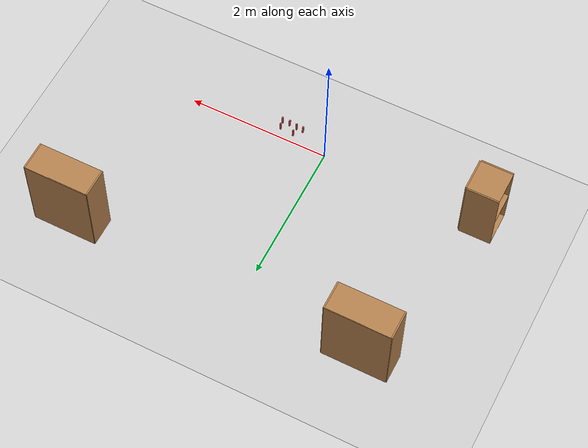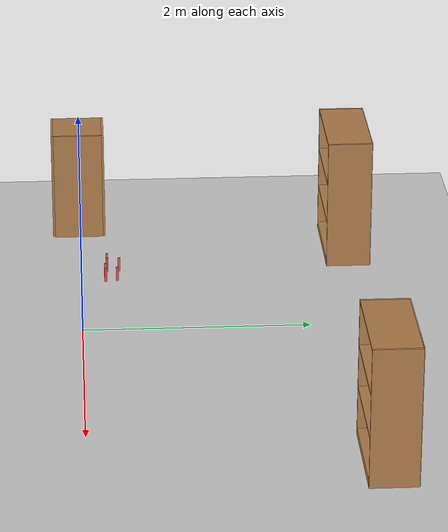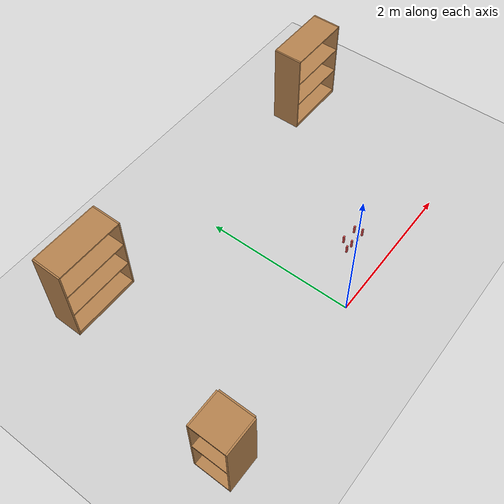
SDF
<sdf version="1.6">
 <world name="default">
  <light name="sun" type="directional">
   <pose>0 0 10 0 -0 0</pose>
   <diffuse>0.8 0.8 0.8 1</diffuse>
   <specular>0.2 0.2 0.2 1</specular>
   <attenuation>
    <range>1000</range>
    <constant>0.9</constant>
    <linear>0.01</linear>
    <quadratic>0.001</quadratic>
   </attenuation>
   <direction>-0.5 0.1 -0.9</direction>
  </light>
  <model name="ground_plane">
   <static>1</static>
   <link name="link">
    <collision name="collision">
     <geometry><plane><normal>0 0 1</normal><size>100 100</size></plane></geometry>
     <surface><friction><ode><mu>100</mu><mu2>50</mu2></ode></friction></surface>
    </collision>
    <visual name="visual">
     <cast_shadows>0</cast_shadows>
     <geometry><plane><normal>0 0 1</normal><size>100 100</size></plane></geometry>
     <material>
      <script><uri>file://media/materials/scripts/gazebo.material</uri><name>Gazebo/Grey</name></script>
     </material>
    </visual>
   </link>
  </model>
  <gravity>0 0 -9.8</gravity>
  <magnetic_field>6e-06 2.3e-05 -4.2e-05</magnetic_field>
  <atmosphere type="adiabatic"/>
  <physics name="default_physics" default="0" type="ode">
   <max_step_size>0.001</max_step_size>
   <real_time_factor>1</real_time_factor>
   <real_time_update_rate>1000</real_time_update_rate>
  </physics>
  <scene><ambient>0.4 0.4 0.4 1</ambient><background>0.7 0.7 0.7 1</background><shadows>1</shadows></scene>
  <audio><device>default</device></audio>
  <spherical_coordinates>
   <surface_model>EARTH_WGS84</surface_model>
   <latitude_deg>0</latitude_deg>
   <longitude_deg>0</longitude_deg>
   <elevation>0</elevation>
   <heading_deg>0</heading_deg>
  </spherical_coordinates>
  <model name="cabinet">
   <static>1</static>
   <link name="cabinet_bottom_plate">
    <inertial>
     <pose>0 0 -1 0 -0 0</pose>
     <inertia><ixx>2.05</ixx><ixy>0</ixy><ixz>0</ixz><iyy>2.05</iyy><iyz>0</iyz><izz>2.05</izz></inertia>
     <mass>25</mass>
    </inertial>
    <collision name="cabinet_bottom_plate_geom">
     <pose>0 0 0.01 0 -0 0</pose>
     <geometry><box><size>0.45 0.45 0.02</size></box></geometry>
    </collision>
    <visual name="cabinet_bottom_plate_geom_visual">
     <pose>0 0 0.01 0 -0 0</pose>
     <geometry><box><size>0.45 0.45 0.02</size></box></geometry>
     <material>
      <script><uri>file://media/materials/scripts/gazebo.material</uri><name>Gazebo/Wood</name></script>
     </material>
    </visual>
    <collision name="cabinet_bottom_plate_geom_cabinet_back_plate">
     <pose>0.235 0 0.51 0 -0 0</pose>
     <geometry><box><size>0.02 0.45 1.02</size></box></geometry>
    </collision>
    <visual name="cabinet_bottom_plate_geom_cabinet_back_plate_visual">
     <pose>0.235 0 0.51 0 -0 0</pose>
     <geometry><box><size>0.02 0.45 1.02</size></box></geometry>
     <material>
      <script><uri>file://media/materials/scripts/gazebo.material</uri><name>Gazebo/Wood</name></script>
     </material>
    </visual>
    <collision name="cabinet_bottom_plate_geom_cabinet_left_plate">
     <pose>0 0.235 0.51 0 -0 0</pose>
     <geometry><box><size>0.45 0.02 1.02</size></box></geometry>
    </collision>
    <visual name="cabinet_bottom_plate_geom_cabinet_left_plate_visual">
     <pose>0 0.235 0.51 0 -0 0</pose>
     <geometry><box><size>0.45 0.02 1.02</size></box></geometry>
     <material>
      <script><uri>file://media/materials/scripts/gazebo.material</uri><name>Gazebo/Wood</name></script>
     </material>
    </visual>
    <collision name="cabinet_bottom_plate_geom_cabinet_middle_plate">
     <pose>0 0 0.51 0 -0 0</pose>
     <geometry><box><size>0.45 0.45 0.02</size></box></geometry>
    </collision>
    <visual name="cabinet_bottom_plate_geom_cabinet_middle_plate_visual">
     <pose>0 0 0.51 0 -0 0</pose>
     <geometry><box><size>0.45 0.45 0.02</size></box></geometry>
     <material>
      <script><uri>file://media/materials/scripts/gazebo.material</uri><name>Gazebo/Wood</name></script>
     </material>
    </visual>
    <collision name="cabinet_bottom_plate_geom_cabinet_right_plate">
     <pose>0 -0.235 0.51 0 -0 0</pose>
     <geometry><box><size>0.45 0.02 1.02</size></box></geometry>
    </collision>
    <visual name="cabinet_bottom_plate_geom_cabinet_right_plate_visual">
     <pose>0 -0.235 0.51 0 -0 0</pose>
     <geometry><box><size>0.45 0.02 1.02</size></box></geometry>
     <material>
      <script><uri>file://media/materials/scripts/gazebo.material</uri><name>Gazebo/Wood</name></script>
     </material>
    </visual>
    <collision name="cabinet_bottom_plate_geom_cabinet_top_plate">
     <pose>0 0 1.01 0 -0 0</pose>
     <geometry><box><size>0.45 0.45 0.02</size></box></geometry>
    </collision>
    <visual name="cabinet_bottom_plate_geom_cabinet_top_plate_visual">
     <pose>0 0 1.01 0 -0 0</pose>
     <geometry><box><size>0.45 0.45 0.02</size></box></geometry>
     <material>
      <script><uri>file://media/materials/scripts/gazebo.material</uri><name>Gazebo/Wood</name></script>
     </material>
    </visual>
   </link>
   <pose>-2.29685 -0.011015 0 0 -0 0</pose>
  </model>
  <model name="bookshelf">
   <static>1</static>
   <link name="link">
    <inertial><mass>1</mass></inertial>
    <collision name="back">
     <pose>0 0.005 0.6 0 -0 0</pose>
     <geometry><box><size>0.9 0.01 1.2</size></box></geometry>
    </collision>
    <visual name="visual1">
     <pose>0 0.005 0.6 0 -0 0</pose>
     <geometry><box><size>0.9 0.01 1.2</size></box></geometry>
     <material>
      <script><uri>file://media/materials/scripts/gazebo.material</uri><name>Gazebo/Wood</name></script>
     </material>
    </visual>
    <collision name="left_side">
     <pose>0.45 -0.195 0.6 0 -0 0</pose>
     <geometry><box><size>0.02 0.4 1.2</size></box></geometry>
    </collision>
    <visual name="visual2">
     <pose>0.45 -0.195 0.6 0 -0 0</pose>
     <geometry><box><size>0.02 0.4 1.2</size></box></geometry>
     <material>
      <script><uri>file://media/materials/scripts/gazebo.material</uri><name>Gazebo/Wood</name></script>
     </material>
    </visual>
    <collision name="right_side">
     <pose>-0.45 -0.195 0.6 0 -0 0</pose>
     <geometry><box><size>0.02 0.4 1.2</size></box></geometry>
    </collision>
    <visual name="visual3">
     <pose>-0.45 -0.195 0.6 0 -0 0</pose>
     <geometry><box><size>0.02 0.4 1.2</size></box></geometry>
     <material>
      <script><uri>file://media/materials/scripts/gazebo.material</uri><name>Gazebo/Wood</name></script>
     </material>
    </visual>
    <collision name="bottom">
     <pose>0 -0.195 0.03 0 -0 0</pose>
     <geometry><box><size>0.88 0.4 0.06</size></box></geometry>
    </collision>
    <visual name="visual4">
     <pose>0 -0.195 0.03 0 -0 0</pose>
     <geometry><box><size>0.88 0.4 0.06</size></box></geometry>
     <material>
      <script><uri>file://media/materials/scripts/gazebo.material</uri><name>Gazebo/Wood</name></script>
     </material>
    </visual>
    <collision name="top">
     <pose>0 -0.195 1.19 0 -0 0</pose>
     <geometry><box><size>0.88 0.4 0.02</size></box></geometry>
    </collision>
    <visual name="visual5">
     <pose>0 -0.195 1.19 0 -0 0</pose>
     <geometry><box><size>0.88 0.4 0.02</size></box></geometry>
     <material>
      <script><uri>file://media/materials/scripts/gazebo.material</uri><name>Gazebo/Wood</name></script>
     </material>
    </visual>
    <collision name="low_shelf">
     <pose>0 -0.195 0.43 0 -0 0</pose>
     <geometry><box><size>0.88 0.4 0.02</size></box></geometry>
    </collision>
    <visual name="visual6">
     <pose>0 -0.195 0.43 0 -0 0</pose>
     <geometry><box><size>0.88 0.4 0.02</size></box></geometry>
     <material>
      <script><uri>file://media/materials/scripts/gazebo.material</uri><name>Gazebo/Wood</name></script>
     </material>
    </visual>
    <collision name="high_shelf">
     <pose>0 -0.195 0.8 0 -0 0</pose>
     <geometry><box><size>0.88 0.4 0.02</size></box></geometry>
    </collision>
    <visual name="visual7">
     <pose>0 -0.195 0.8 0 -0 0</pose>
     <geometry><box><size>0.88 0.4 0.02</size></box></geometry>
     <material>
      <script><uri>file://media/materials/scripts/gazebo.material</uri><name>Gazebo/Wood</name></script>
     </material>
    </visual>
   </link>
   <pose>-1.70945 2.65382 0 0 -0 0</pose>
  </model>
  <model name="bookshelf_0">
   <static>1</static>
   <link name="link">
    <inertial><mass>1</mass></inertial>
    <collision name="back">
     <pose>0 0.005 0.6 0 -0 0</pose>
     <geometry><box><size>0.9 0.01 1.2</size></box></geometry>
    </collision>
    <visual name="visual1">
     <pose>0 0.005 0.6 0 -0 0</pose>
     <geometry><box><size>0.9 0.01 1.2</size></box></geometry>
     <material>
      <script><uri>file://media/materials/scripts/gazebo.material</uri><name>Gazebo/Wood</name></script>
     </material>
    </visual>
    <collision name="left_side">
     <pose>0.45 -0.195 0.6 0 -0 0</pose>
     <geometry><box><size>0.02 0.4 1.2</size></box></geometry>
    </collision>
    <visual name="visual2">
     <pose>0.45 -0.195 0.6 0 -0 0</pose>
     <geometry><box><size>0.02 0.4 1.2</size></box></geometry>
     <material>
      <script><uri>file://media/materials/scripts/gazebo.material</uri><name>Gazebo/Wood</name></script>
     </material>
    </visual>
    <collision name="right_side">
     <pose>-0.45 -0.195 0.6 0 -0 0</pose>
     <geometry><box><size>0.02 0.4 1.2</size></box></geometry>
    </collision>
    <visual name="visual3">
     <pose>-0.45 -0.195 0.6 0 -0 0</pose>
     <geometry><box><size>0.02 0.4 1.2</size></box></geometry>
     <material>
      <script><uri>file://media/materials/scripts/gazebo.material</uri><name>Gazebo/Wood</name></script>
     </material>
    </visual>
    <collision name="bottom">
     <pose>0 -0.195 0.03 0 -0 0</pose>
     <geometry><box><size>0.88 0.4 0.06</size></box></geometry>
    </collision>
    <visual name="visual4">
     <pose>0 -0.195 0.03 0 -0 0</pose>
     <geometry><box><size>0.88 0.4 0.06</size></box></geometry>
     <material>
      <script><uri>file://media/materials/scripts/gazebo.material</uri><name>Gazebo/Wood</name></script>
     </material>
    </visual>
    <collision name="top">
     <pose>0 -0.195 1.19 0 -0 0</pose>
     <geometry><box><size>0.88 0.4 0.02</size></box></geometry>
    </collision>
    <visual name="visual5">
     <pose>0 -0.195 1.19 0 -0 0</pose>
     <geometry><box><size>0.88 0.4 0.02</size></box></geometry>
     <material>
      <script><uri>file://media/materials/scripts/gazebo.material</uri><name>Gazebo/Wood</name></script>
     </material>
    </visual>
    <collision name="low_shelf">
     <pose>0 -0.195 0.43 0 -0 0</pose>
     <geometry><box><size>0.88 0.4 0.02</size></box></geometry>
    </collision>
    <visual name="visual6">
     <pose>0 -0.195 0.43 0 -0 0</pose>
     <geometry><box><size>0.88 0.4 0.02</size></box></geometry>
     <material>
      <script><uri>file://media/materials/scripts/gazebo.material</uri><name>Gazebo/Wood</name></script>
     </material>
    </visual>
    <collision name="high_shelf">
     <pose>0 -0.195 0.8 0 -0 0</pose>
     <geometry><box><size>0.88 0.4 0.02</size></box></geometry>
    </collision>
    <visual name="visual7">
     <pose>0 -0.195 0.8 0 -0 0</pose>
     <geometry><box><size>0.88 0.4 0.02</size></box></geometry>
     <material>
      <script><uri>file://media/materials/scripts/gazebo.material</uri><name>Gazebo/Wood</name></script>
     </material>
    </visual>
   </link>
   <pose>2.52008 2.58706 0 0 -0 0</pose>
  </model>
  <model name="fang_can">
   <link name="link_0">
    <inertial>
     <mass>0.1</mass>
     <inertia>
      <ixx>0.166667</ixx>
      <ixy>0</ixy>
      <ixz>0</ixz>
      <iyy>0.166667</iyy>
      <iyz>0</iyz>
      <izz>0.166667</izz>
     </inertia>
    </inertial>
    <visual name="visual">
     <geometry><box><size>0.02 0.02 0.12</size></box></geometry>
     <material>
      <lighting>1</lighting>
      <script><uri>file://media/materials/scripts/gazebo.material</uri><name>Gazebo/Grey</name></script>
      <shader type="vertex"><normal_map>__default__</normal_map></shader>
      <ambient>0.9 0.3 0.3 1</ambient>
      <diffuse>0.7 0.7 0.7 1</diffuse>
      <specular>0.01 0.01 0.01 1</specular>
      <emissive>0.8 0 0 1</emissive>
     </material>
    </visual>
    <collision name="collision">
     <geometry><box><size>0.02 0.02 0.12</size></box></geometry>
     <surface>
      <friction>
       <ode><mu>1</mu><mu2>1</mu2><fdir1>0 0 0</fdir1><slip1>0</slip1><slip2>0</slip2></ode>
       <torsional>
        <coefficient>1</coefficient>
        <patch_radius>0</patch_radius>
        <surface_radius>0</surface_radius>
        <use_patch_radius>1</use_patch_radius>
        <ode><slip>0</slip></ode>
       </torsional>
      </friction>
      <bounce><restitution_coefficient>0</restitution_coefficient><threshold>1e+06</threshold></bounce>
      <contact>
       <collide_without_contact>0</collide_without_contact>
       <collide_without_contact_bitmask>1</collide_without_contact_bitmask>
       <collide_bitmask>1</collide_bitmask>
       <ode>
        <soft_cfm>0</soft_cfm>
        <soft_erp>0.2</soft_erp>
        <kp>1e+13</kp>
        <kd>1</kd>
        <max_vel>0.01</max_vel>
        <min_depth>0</min_depth>
       </ode>
       <bullet>
        <split_impulse>1</split_impulse>
        <split_impulse_penetration_threshold>-0.01</split_impulse_penetration_threshold>
        <soft_cfm>0</soft_cfm>
        <soft_erp>0.2</soft_erp>
        <kp>1e+13</kp>
        <kd>1</kd>
       </bullet>
      </contact>
     </surface>
    </collision>
   </link>
   <static>0</static>
   <pose>0.535172 0.203189 0.772422 -0.007193 0.00238 0.031626</pose>
  </model>
  <model name="fang_can_clone">
   <link name="link_0">
    <inertial>
     <mass>0.1</mass>
     <inertia>
      <ixx>0.166667</ixx>
      <ixy>0</ixy>
      <ixz>0</ixz>
      <iyy>0.166667</iyy>
      <iyz>0</iyz>
      <izz>0.166667</izz>
     </inertia>
    </inertial>
    <visual name="visual">
     <geometry><box><size>0.02 0.02 0.12</size></box></geometry>
     <material>
      <lighting>1</lighting>
      <script><uri>file://media/materials/scripts/gazebo.material</uri><name>Gazebo/Grey</name></script>
      <shader type="vertex"><normal_map>__default__</normal_map></shader>
      <ambient>0.9 0.3 0.3 1</ambient>
      <diffuse>0.7 0.7 0.7 1</diffuse>
      <specular>0.01 0.01 0.01 1</specular>
      <emissive>0.8 0 0 1</emissive>
     </material>
    </visual>
    <collision name="collision">
     <geometry><box><size>0.02 0.02 0.12</size></box></geometry>
     <surface>
      <friction>
       <ode><mu>1</mu><mu2>1</mu2><fdir1>0 0 0</fdir1><slip1>0</slip1><slip2>0</slip2></ode>
       <torsional>
        <coefficient>1</coefficient>
        <patch_radius>0</patch_radius>
        <surface_radius>0</surface_radius>
        <use_patch_radius>1</use_patch_radius>
        <ode><slip>0</slip></ode>
       </torsional>
      </friction>
      <bounce><restitution_coefficient>0</restitution_coefficient><threshold>1e+06</threshold></bounce>
      <contact>
       <collide_without_contact>0</collide_without_contact>
       <collide_without_contact_bitmask>1</collide_without_contact_bitmask>
       <collide_bitmask>1</collide_bitmask>
       <ode>
        <soft_cfm>0</soft_cfm>
        <soft_erp>0.2</soft_erp>
        <kp>1e+13</kp>
        <kd>1</kd>
        <max_vel>0.01</max_vel>
        <min_depth>0</min_depth>
       </ode>
       <bullet>
        <split_impulse>1</split_impulse>
        <split_impulse_penetration_threshold>-0.01</split_impulse_penetration_threshold>
        <soft_cfm>0</soft_cfm>
        <soft_erp>0.2</soft_erp>
        <kp>1e+13</kp>
        <kd>1</kd>
       </bullet>
      </contact>
     </surface>
    </collision>
   </link>
   <static>0</static>
   <pose>0.327324 0.214969 0.772423 -0.007097 0.002137 0.071172</pose>
  </model>
  <model name="fang_can_clone_0">
   <link name="link_0">
    <inertial>
     <mass>0.1</mass>
     <inertia>
      <ixx>0.166667</ixx>
      <ixy>0</ixy>
      <ixz>0</ixz>
      <iyy>0.166667</iyy>
      <iyz>0</iyz>
      <izz>0.166667</izz>
     </inertia>
    </inertial>
    <visual name="visual">
     <geometry><box><size>0.02 0.02 0.12</size></box></geometry>
     <material>
      <lighting>1</lighting>
      <script><uri>file://media/materials/scripts/gazebo.material</uri><name>Gazebo/Grey</name></script>
      <shader type="vertex"><normal_map>__default__</normal_map></shader>
      <ambient>0.9 0.3 0.3 1</ambient>
      <diffuse>0.7 0.7 0.7 1</diffuse>
      <specular>0.01 0.01 0.01 1</specular>
      <emissive>0.8 0 0 1</emissive>
     </material>
    </visual>
    <collision name="collision">
     <geometry><box><size>0.02 0.02 0.12</size></box></geometry>
     <surface>
      <friction>
       <ode><mu>1</mu><mu2>1</mu2><fdir1>0 0 0</fdir1><slip1>0</slip1><slip2>0</slip2></ode>
       <torsional>
        <coefficient>1</coefficient>
        <patch_radius>0</patch_radius>
        <surface_radius>0</surface_radius>
        <use_patch_radius>1</use_patch_radius>
        <ode><slip>0</slip></ode>
       </torsional>
      </friction>
      <bounce><restitution_coefficient>0</restitution_coefficient><threshold>1e+06</threshold></bounce>
      <contact>
       <collide_without_contact>0</collide_without_contact>
       <collide_without_contact_bitmask>1</collide_without_contact_bitmask>
       <collide_bitmask>1</collide_bitmask>
       <ode>
        <soft_cfm>0</soft_cfm>
        <soft_erp>0.2</soft_erp>
        <kp>1e+13</kp>
        <kd>1</kd>
        <max_vel>0.01</max_vel>
        <min_depth>0</min_depth>
       </ode>
       <bullet>
        <split_impulse>1</split_impulse>
        <split_impulse_penetration_threshold>-0.01</split_impulse_penetration_threshold>
        <soft_cfm>0</soft_cfm>
        <soft_erp>0.2</soft_erp>
        <kp>1e+13</kp>
        <kd>1</kd>
       </bullet>
      </contact>
     </surface>
    </collision>
   </link>
   <static>0</static>
   <pose>0.432029 0.202602 0.771736 0.005739 -0.039189 -0.151002</pose>
  </model>
  <model name="fang_can_clone_1">
   <link name="link_0">
    <inertial>
     <mass>0.1</mass>
     <inertia>
      <ixx>0.166667</ixx>
      <ixy>0</ixy>
      <ixz>0</ixz>
      <iyy>0.166667</iyy>
      <iyz>0</iyz>
      <izz>0.166667</izz>
     </inertia>
    </inertial>
    <visual name="visual">
     <geometry><box><size>0.02 0.02 0.12</size></box></geometry>
     <material>
      <lighting>1</lighting>
      <script><uri>file://media/materials/scripts/gazebo.material</uri><name>Gazebo/Grey</name></script>
      <shader type="vertex"><normal_map>__default__</normal_map></shader>
      <ambient>0.9 0.3 0.3 1</ambient>
      <diffuse>0.7 0.7 0.7 1</diffuse>
      <specular>0.01 0.01 0.01 1</specular>
      <emissive>0.8 0 0 1</emissive>
     </material>
    </visual>
    <collision name="collision">
     <geometry><box><size>0.02 0.02 0.12</size></box></geometry>
     <surface>
      <friction>
       <ode><mu>1</mu><mu2>1</mu2><fdir1>0 0 0</fdir1><slip1>0</slip1><slip2>0</slip2></ode>
       <torsional>
        <coefficient>1</coefficient>
        <patch_radius>0</patch_radius>
        <surface_radius>0</surface_radius>
        <use_patch_radius>1</use_patch_radius>
        <ode><slip>0</slip></ode>
       </torsional>
      </friction>
      <bounce><restitution_coefficient>0</restitution_coefficient><threshold>1e+06</threshold></bounce>
      <contact>
       <collide_without_contact>0</collide_without_contact>
       <collide_without_contact_bitmask>1</collide_without_contact_bitmask>
       <collide_bitmask>1</collide_bitmask>
       <ode>
        <soft_cfm>0</soft_cfm>
        <soft_erp>0.2</soft_erp>
        <kp>1e+13</kp>
        <kd>1</kd>
        <max_vel>0.01</max_vel>
        <min_depth>0</min_depth>
       </ode>
       <bullet>
        <split_impulse>1</split_impulse>
        <split_impulse_penetration_threshold>-0.01</split_impulse_penetration_threshold>
        <soft_cfm>0</soft_cfm>
        <soft_erp>0.2</soft_erp>
        <kp>1e+13</kp>
        <kd>1</kd>
       </bullet>
      </contact>
     </surface>
    </collision>
   </link>
   <static>0</static>
   <pose>0.516673 0.300352 0.77209 0.009999 -0.021673 -0.005976</pose>
  </model>
  <model name="fang_can_clone_2">
   <link name="link_0">
    <inertial>
     <mass>0.1</mass>
     <inertia>
      <ixx>0.166667</ixx>
      <ixy>0</ixy>
      <ixz>0</ixz>
      <iyy>0.166667</iyy>
      <iyz>0</iyz>
      <izz>0.166667</izz>
     </inertia>
    </inertial>
    <visual name="visual">
     <geometry><box><size>0.02 0.02 0.12</size></box></geometry>
     <material>
      <lighting>1</lighting>
      <script><uri>file://media/materials/scripts/gazebo.material</uri><name>Gazebo/Grey</name></script>
      <shader type="vertex"><normal_map>__default__</normal_map></shader>
      <ambient>0.9 0.3 0.3 1</ambient>
      <diffuse>0.7 0.7 0.7 1</diffuse>
      <specular>0.01 0.01 0.01 1</specular>
      <emissive>0.8 0 0 1</emissive>
     </material>
    </visual>
    <collision name="collision">
     <geometry><box><size>0.02 0.02 0.12</size></box></geometry>
     <surface>
      <friction>
       <ode><mu>1</mu><mu2>1</mu2><fdir1>0 0 0</fdir1><slip1>0</slip1><slip2>0</slip2></ode>
       <torsional>
        <coefficient>1</coefficient>
        <patch_radius>0</patch_radius>
        <surface_radius>0</surface_radius>
        <use_patch_radius>1</use_patch_radius>
        <ode><slip>0</slip></ode>
       </torsional>
      </friction>
      <bounce><restitution_coefficient>0</restitution_coefficient><threshold>1e+06</threshold></bounce>
      <contact>
       <collide_without_contact>0</collide_without_contact>
       <collide_without_contact_bitmask>1</collide_without_contact_bitmask>
       <collide_bitmask>1</collide_bitmask>
       <ode>
        <soft_cfm>0</soft_cfm>
        <soft_erp>0.2</soft_erp>
        <kp>1e+13</kp>
        <kd>1</kd>
        <max_vel>0.01</max_vel>
        <min_depth>0</min_depth>
       </ode>
       <bullet>
        <split_impulse>1</split_impulse>
        <split_impulse_penetration_threshold>-0.01</split_impulse_penetration_threshold>
        <soft_cfm>0</soft_cfm>
        <soft_erp>0.2</soft_erp>
        <kp>1e+13</kp>
        <kd>1</kd>
       </bullet>
      </contact>
     </surface>
    </collision>
   </link>
   <static>0</static>
   <pose>0.231051 0.217022 0.771737 0.005647 -0.039251 -0.001178</pose>
  </model>
  <model name="fang_can_clone_3">
   <link name="link_0">
    <inertial>
     <mass>0.1</mass>
     <inertia>
      <ixx>0.166667</ixx>
      <ixy>0</ixy>
      <ixz>0</ixz>
      <iyy>0.166667</iyy>
      <iyz>0</iyz>
      <izz>0.166667</izz>
     </inertia>
    </inertial>
    <visual name="visual">
     <geometry><box><size>0.02 0.02 0.12</size></box></geometry>
     <material>
      <lighting>1</lighting>
      <script><uri>file://media/materials/scripts/gazebo.material</uri><name>Gazebo/Grey</name></script>
      <shader type="vertex"><normal_map>__default__</normal_map></shader>
      <ambient>0.9 0.3 0.3 1</ambient>
      <diffuse>0.7 0.7 0.7 1</diffuse>
      <specular>0.01 0.01 0.01 1</specular>
      <emissive>0.8 0 0 1</emissive>
     </material>
    </visual>
    <collision name="collision">
     <geometry><box><size>0.02 0.02 0.12</size></box></geometry>
     <surface>
      <friction>
       <ode><mu>1</mu><mu2>1</mu2><fdir1>0 0 0</fdir1><slip1>0</slip1><slip2>0</slip2></ode>
       <torsional>
        <coefficient>1</coefficient>
        <patch_radius>0</patch_radius>
        <surface_radius>0</surface_radius>
        <use_patch_radius>1</use_patch_radius>
        <ode><slip>0</slip></ode>
       </torsional>
      </friction>
      <bounce><restitution_coefficient>0</restitution_coefficient><threshold>1e+06</threshold></bounce>
      <contact>
       <collide_without_contact>0</collide_without_contact>
       <collide_without_contact_bitmask>1</collide_without_contact_bitmask>
       <collide_bitmask>1</collide_bitmask>
       <ode>
        <soft_cfm>0</soft_cfm>
        <soft_erp>0.2</soft_erp>
        <kp>1e+13</kp>
        <kd>1</kd>
        <max_vel>0.01</max_vel>
        <min_depth>0</min_depth>
       </ode>
       <bullet>
        <split_impulse>1</split_impulse>
        <split_impulse_penetration_threshold>-0.01</split_impulse_penetration_threshold>
        <soft_cfm>0</soft_cfm>
        <soft_erp>0.2</soft_erp>
        <kp>1e+13</kp>
        <kd>1</kd>
       </bullet>
      </contact>
     </surface>
    </collision>
   </link>
   <static>0</static>
   <pose>0.323903 0.319343 0.771752 0.003363 -0.040764 -0.001302</pose>
  </model>
 </world>
</sdf>
